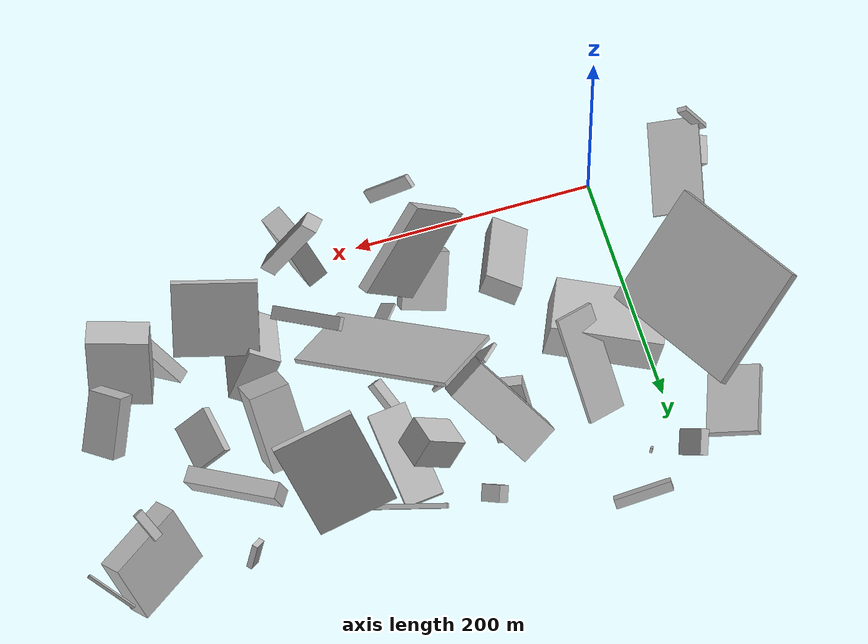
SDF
<sdf version="1.6">
 <world name="default">
  <model name="building_1">
   <static>0</static>
   <pose>1.3274118983855792 208.78622536845384 112.00216672509201 -0.9905370342779287 -0.22132501238584557 2.013250393915186</pose>
   <link name="link">
    <gravity>0</gravity>
    <pose>0 0 51.5 0 0 0</pose>
    <collision name="collision"><geometry><box><size>125 8 103</size></box></geometry></collision>
    <visual name="visual">
     <cast_shadows>0</cast_shadows>
     <geometry><box><size>125 8 103</size></box></geometry>
     <material>
      <script>
       <uri>model://HANNAS_wall/materials/scripts</uri>
       <uri>model://HANNAS_wall/materials/textures</uri>
       <name>vrc/HANNAS_wall</name>
      </script>
     </material>
    </visual>
   </link>
  </model>
  <model name="building_2">
   <static>0</static>
   <pose>24.79634708161931 129.62913767609635 50.97540744650268 1.660217493929028 0.11486067420688008 2.737960448891302</pose>
   <link name="link">
    <gravity>0</gravity>
    <pose>0 0 22.0 0 0 0</pose>
    <collision name="collision"><geometry><box><size>92 57 44</size></box></geometry></collision>
    <visual name="visual">
     <cast_shadows>0</cast_shadows>
     <geometry><box><size>92 57 44</size></box></geometry>
     <material>
      <script>
       <uri>model://HANNAS_wall/materials/scripts</uri>
       <uri>model://HANNAS_wall/materials/textures</uri>
       <name>vrc/HANNAS_wall</name>
      </script>
     </material>
    </visual>
   </link>
  </model>
  <model name="building_3">
   <static>0</static>
   <pose>208.85143768496755 136.13888734552614 75.28464623633099 0.3250127796803867 0.47955956256285365 -0.7325142716769804</pose>
   <link name="link">
    <gravity>0</gravity>
    <pose>0 0 2.0 0 0 0</pose>
    <collision name="collision"><geometry><box><size>150 65 4</size></box></geometry></collision>
    <visual name="visual">
     <cast_shadows>0</cast_shadows>
     <geometry><box><size>150 65 4</size></box></geometry>
     <material>
      <script>
       <uri>model://HANNAS_wall/materials/scripts</uri>
       <uri>model://HANNAS_wall/materials/textures</uri>
       <name>vrc/HANNAS_wall</name>
      </script>
     </material>
    </visual>
   </link>
  </model>
  <model name="building_4">
   <static>0</static>
   <pose>250.6017870113002 26.67992876694649 59.211925570522695 2.1870284420666897 -1.2887753153023662 -0.2899153582360417</pose>
   <link name="link">
    <gravity>0</gravity>
    <pose>0 0 14.0 0 0 0</pose>
    <collision name="collision"><geometry><box><size>80 18 28</size></box></geometry></collision>
    <visual name="visual">
     <cast_shadows>0</cast_shadows>
     <geometry><box><size>80 18 28</size></box></geometry>
     <material>
      <script>
       <uri>model://HANNAS_wall/materials/scripts</uri>
       <uri>model://HANNAS_wall/materials/textures</uri>
       <name>vrc/HANNAS_wall</name>
      </script>
     </material>
    </visual>
   </link>
  </model>
  <model name="building_6">
   <static>0</static>
   <pose>312.63157039077606 189.9651662339874 47.1140436336167 0.0026381380866511038 -0.6909395511283071 1.712107733959153</pose>
   <link name="link">
    <gravity>0</gravity>
    <pose>0 0 34.0 0 0 0</pose>
    <collision name="collision"><geometry><box><size>31 34 68</size></box></geometry></collision>
    <visual name="visual">
     <cast_shadows>0</cast_shadows>
     <geometry><box><size>31 34 68</size></box></geometry>
     <material>
      <script>
       <uri>model://HANNAS_wall/materials/scripts</uri>
       <uri>model://HANNAS_wall/materials/textures</uri>
       <name>vrc/HANNAS_wall</name>
      </script>
     </material>
    </visual>
   </link>
  </model>
  <model name="building_8">
   <static>0</static>
   <pose>58.646862178843136 181.81467790679918 54.73529243510025 0.8285575852619248 0.15089534409982477 -2.8275419913323807</pose>
   <link name="link">
    <gravity>0</gravity>
    <pose>0 0 2.0 0 0 0</pose>
    <collision name="collision"><geometry><box><size>33 93 4</size></box></geometry></collision>
    <visual name="visual">
     <cast_shadows>0</cast_shadows>
     <geometry><box><size>33 93 4</size></box></geometry>
     <material>
      <script>
       <uri>model://HANNAS_wall/materials/scripts</uri>
       <uri>model://HANNAS_wall/materials/textures</uri>
       <name>vrc/HANNAS_wall</name>
      </script>
     </material>
    </visual>
   </link>
  </model>
  <model name="building_9">
   <static>0</static>
   <pose>-81.45271103671784 4.308909702176099 77.74281443047568 1.1389647362476447 -0.11104611499235452 -1.768513082870891</pose>
   <link name="link">
    <gravity>0</gravity>
    <pose>0 0 4.0 0 0 0</pose>
    <collision name="collision"><geometry><box><size>4 44 8</size></box></geometry></collision>
    <visual name="visual">
     <cast_shadows>0</cast_shadows>
     <geometry><box><size>4 44 8</size></box></geometry>
     <material>
      <script>
       <uri>model://HANNAS_wall/materials/scripts</uri>
       <uri>model://HANNAS_wall/materials/textures</uri>
       <name>vrc/HANNAS_wall</name>
      </script>
     </material>
    </visual>
   </link>
  </model>
  <model name="building_11">
   <static>0</static>
   <pose>279.88081561566725 280.18441187853387 105.52363105121016 0.09408208423018355 0.20599704825763795 0.10961394803771672</pose>
   <link name="link">
    <gravity>0</gravity>
    <pose>0 0 75.0 0 0 0</pose>
    <collision name="collision"><geometry><box><size>66 4 150</size></box></geometry></collision>
    <visual name="visual">
     <cast_shadows>0</cast_shadows>
     <geometry><box><size>66 4 150</size></box></geometry>
     <material>
      <script>
       <uri>model://HANNAS_wall/materials/scripts</uri>
       <uri>model://HANNAS_wall/materials/textures</uri>
       <name>vrc/HANNAS_wall</name>
      </script>
     </material>
    </visual>
   </link>
  </model>
  <model name="building_14">
   <static>0</static>
   <pose>359.50408824925614 251.25148403319713 26.890394799365673 1.6108577501959744 -1.2223145256482797 -2.4950177120027637</pose>
   <link name="link">
    <gravity>0</gravity>
    <pose>0 0 2.5 0 0 0</pose>
    <collision name="collision"><geometry><box><size>26 10 5</size></box></geometry></collision>
    <visual name="visual">
     <cast_shadows>0</cast_shadows>
     <geometry><box><size>26 10 5</size></box></geometry>
     <material>
      <script>
       <uri>model://HANNAS_wall/materials/scripts</uri>
       <uri>model://HANNAS_wall/materials/textures</uri>
       <name>vrc/HANNAS_wall</name>
      </script>
     </material>
    </visual>
   </link>
  </model>
  <model name="building_17">
   <static>0</static>
   <pose>387.34950724208306 168.74131877873654 66.89703472776861 -0.23988855885658888 -0.7831872075637343 0.3460522305099299</pose>
   <link name="link">
    <gravity>0</gravity>
    <pose>0 0 16.5 0 0 0</pose>
    <collision name="collision"><geometry><box><size>8 39 33</size></box></geometry></collision>
    <visual name="visual">
     <cast_shadows>0</cast_shadows>
     <geometry><box><size>8 39 33</size></box></geometry>
     <material>
      <script>
       <uri>model://HANNAS_wall/materials/scripts</uri>
       <uri>model://HANNAS_wall/materials/textures</uri>
       <name>vrc/HANNAS_wall</name>
      </script>
     </material>
    </visual>
   </link>
  </model>
  <model name="building_19">
   <static>0</static>
   <pose>94.05640267748947 73.25885111039122 102.94713526971915 0.9214559560347219 0.26132134790668404 2.58080112795817</pose>
   <link name="link">
    <gravity>0</gravity>
    <pose>0 0 52.5 0 0 0</pose>
    <collision name="collision"><geometry><box><size>30 16 105</size></box></geometry></collision>
    <visual name="visual">
     <cast_shadows>0</cast_shadows>
     <geometry><box><size>30 16 105</size></box></geometry>
     <material>
      <script>
       <uri>model://HANNAS_wall/materials/scripts</uri>
       <uri>model://HANNAS_wall/materials/textures</uri>
       <name>vrc/HANNAS_wall</name>
      </script>
     </material>
    </visual>
   </link>
  </model>
  <model name="building_22">
   <static>0</static>
   <pose>403.1895105328669 94.0693859038324 21.649193044620347 -1.009065354302445 0.5803668132099041 -1.820546380904361</pose>
   <link name="link">
    <gravity>0</gravity>
    <pose>0 0 21.5 0 0 0</pose>
    <collision name="collision"><geometry><box><size>4 8 43</size></box></geometry></collision>
    <visual name="visual">
     <cast_shadows>0</cast_shadows>
     <geometry><box><size>4 8 43</size></box></geometry>
     <material>
      <script>
       <uri>model://HANNAS_wall/materials/scripts</uri>
       <uri>model://HANNAS_wall/materials/textures</uri>
       <name>vrc/HANNAS_wall</name>
      </script>
     </material>
    </visual>
   </link>
  </model>
  <model name="building_23">
   <static>0</static>
   <pose>324.5869534624123 86.12116498699646 45.30128760279128 2.247115104203333 -0.9235219572066491 -2.5584329920215634</pose>
   <link name="link">
    <gravity>0</gravity>
    <pose>0 0 13.5 0 0 0</pose>
    <collision name="collision"><geometry><box><size>46 64 27</size></box></geometry></collision>
    <visual name="visual">
     <cast_shadows>0</cast_shadows>
     <geometry><box><size>46 64 27</size></box></geometry>
     <material>
      <script>
       <uri>model://HANNAS_wall/materials/scripts</uri>
       <uri>model://HANNAS_wall/materials/textures</uri>
       <name>vrc/HANNAS_wall</name>
      </script>
     </material>
    </visual>
   </link>
  </model>
  <model name="building_24">
   <static>0</static>
   <pose>201.14379093418495 241.34477645276732 89.18895774992129 -1.9200010605693716 -0.876569280515366 -2.6745905295038446</pose>
   <link name="link">
    <gravity>0</gravity>
    <pose>0 0 14.0 0 0 0</pose>
    <collision name="collision"><geometry><box><size>27 37 28</size></box></geometry></collision>
    <visual name="visual">
     <cast_shadows>0</cast_shadows>
     <geometry><box><size>27 37 28</size></box></geometry>
     <material>
      <script>
       <uri>model://HANNAS_wall/materials/scripts</uri>
       <uri>model://HANNAS_wall/materials/textures</uri>
       <name>vrc/HANNAS_wall</name>
      </script>
     </material>
    </visual>
   </link>
  </model>
  <model name="building_26">
   <static>0</static>
   <pose>127.20560816456673 192.5883205190307 40.63039831246532 1.227269760062916 -0.24161373881534542 2.85362225382158</pose>
   <link name="link">
    <gravity>0</gravity>
    <pose>0 0 5.5 0 0 0</pose>
    <collision name="collision"><geometry><box><size>33 61 11</size></box></geometry></collision>
    <visual name="visual">
     <cast_shadows>0</cast_shadows>
     <geometry><box><size>33 61 11</size></box></geometry>
     <material>
      <script>
       <uri>model://HANNAS_wall/materials/scripts</uri>
       <uri>model://HANNAS_wall/materials/textures</uri>
       <name>vrc/HANNAS_wall</name>
      </script>
     </material>
    </visual>
   </link>
  </model>
  <model name="building_27">
   <static>0</static>
   <pose>433.2891129298189 244.47987343303427 35.89221615302713 2.0071429268056478 0.0441570005193739 0.5960258012477532</pose>
   <link name="link">
    <gravity>0</gravity>
    <pose>0 0 10.0 0 0 0</pose>
    <collision name="collision"><geometry><box><size>68 61 20</size></box></geometry></collision>
    <visual name="visual">
     <cast_shadows>0</cast_shadows>
     <geometry><box><size>68 61 20</size></box></geometry>
     <material>
      <script>
       <uri>model://HANNAS_wall/materials/scripts</uri>
       <uri>model://HANNAS_wall/materials/textures</uri>
       <name>vrc/HANNAS_wall</name>
      </script>
     </material>
    </visual>
   </link>
  </model>
  <model name="building_33">
   <static>0</static>
   <pose>302.12228141309674 237.96302263642295 45.3980988848065 -0.7925527091497501 -1.0559313833714836 0.4132108049893191</pose>
   <link name="link">
    <gravity>0</gravity>
    <pose>0 0 56.0 0 0 0</pose>
    <collision name="collision"><geometry><box><size>4 4 112</size></box></geometry></collision>
    <visual name="visual">
     <cast_shadows>0</cast_shadows>
     <geometry><box><size>4 4 112</size></box></geometry>
     <material>
      <script>
       <uri>model://HANNAS_wall/materials/scripts</uri>
       <uri>model://HANNAS_wall/materials/textures</uri>
       <name>vrc/HANNAS_wall</name>
      </script>
     </material>
    </visual>
   </link>
  </model>
  <model name="building_37">
   <static>0</static>
   <pose>423.68694761615023 100.53561510437379 58.42877765906608 0.01335591676967928 -0.22013701891844703 1.2499730855023217</pose>
   <link name="link">
    <gravity>0</gravity>
    <pose>0 0 37.5 0 0 0</pose>
    <collision name="collision"><geometry><box><size>23 50 75</size></box></geometry></collision>
    <visual name="visual">
     <cast_shadows>0</cast_shadows>
     <geometry><box><size>23 50 75</size></box></geometry>
     <material>
      <script>
       <uri>model://HANNAS_wall/materials/scripts</uri>
       <uri>model://HANNAS_wall/materials/textures</uri>
       <name>vrc/HANNAS_wall</name>
      </script>
     </material>
    </visual>
   </link>
  </model>
  <model name="building_38">
   <static>0</static>
   <pose>371.6042686408592 68.59174903682741 97.70544595038807 1.5692689198483272 0.521952412548534 -1.8432740669533143</pose>
   <link name="link">
    <gravity>0</gravity>
    <pose>0 0 34.5 0 0 0</pose>
    <collision name="collision"><geometry><box><size>5 69 69</size></box></geometry></collision>
    <visual name="visual">
     <cast_shadows>0</cast_shadows>
     <geometry><box><size>5 69 69</size></box></geometry>
     <material>
      <script>
       <uri>model://HANNAS_wall/materials/scripts</uri>
       <uri>model://HANNAS_wall/materials/textures</uri>
       <name>vrc/HANNAS_wall</name>
      </script>
     </material>
    </visual>
   </link>
  </model>
  <model name="building_40">
   <static>0</static>
   <pose>280.82934586149344 36.42514106211149 81.28288880397696 0.32709123719878874 -0.1270595116564671 -2.3000670465577744</pose>
   <link name="link">
    <gravity>0</gravity>
    <pose>0 0 75.0 0 0 0</pose>
    <collision name="collision"><geometry><box><size>12 13 150</size></box></geometry></collision>
    <visual name="visual">
     <cast_shadows>0</cast_shadows>
     <geometry><box><size>12 13 150</size></box></geometry>
     <material>
      <script>
       <uri>model://HANNAS_wall/materials/scripts</uri>
       <uri>model://HANNAS_wall/materials/textures</uri>
       <name>vrc/HANNAS_wall</name>
      </script>
     </material>
    </visual>
   </link>
  </model>
  <model name="building_41">
   <static>0</static>
   <pose>121.56065048794039 242.32937008884414 67.22205480873959 0.6461765429087863 -0.9210560477361449 1.5013260430137203</pose>
   <link name="link">
    <gravity>0</gravity>
    <pose>0 0 40.0 0 0 0</pose>
    <collision name="collision"><geometry><box><size>39 35 80</size></box></geometry></collision>
    <visual name="visual">
     <cast_shadows>0</cast_shadows>
     <geometry><box><size>39 35 80</size></box></geometry>
     <material>
      <script>
       <uri>model://HANNAS_wall/materials/scripts</uri>
       <uri>model://HANNAS_wall/materials/textures</uri>
       <name>vrc/HANNAS_wall</name>
      </script>
     </material>
    </visual>
   </link>
  </model>
  <model name="building_42">
   <static>0</static>
   <pose>206.86778625765461 82.42206589510195 10.009627297417815 1.3890027469590227 0.7761628268746331 -0.8342027626613067</pose>
   <link name="link">
    <gravity>0</gravity>
    <pose>0 0 12.5 0 0 0</pose>
    <collision name="collision"><geometry><box><size>18 2 25</size></box></geometry></collision>
    <visual name="visual">
     <cast_shadows>0</cast_shadows>
     <geometry><box><size>18 2 25</size></box></geometry>
     <material>
      <script>
       <uri>model://HANNAS_wall/materials/scripts</uri>
       <uri>model://HANNAS_wall/materials/textures</uri>
       <name>vrc/HANNAS_wall</name>
      </script>
     </material>
    </visual>
   </link>
  </model>
  <model name="building_44">
   <static>0</static>
   <pose>26.08158891377675 249.46596904179214 5.183209780218647 -0.01181578424232052 0.814186966878552 -2.109174800506235</pose>
   <link name="link">
    <gravity>0</gravity>
    <pose>0 0 2.0 0 0 0</pose>
    <collision name="collision"><geometry><box><size>6 2 4</size></box></geometry></collision>
    <visual name="visual">
     <cast_shadows>0</cast_shadows>
     <geometry><box><size>6 2 4</size></box></geometry>
     <material>
      <script>
       <uri>model://HANNAS_wall/materials/scripts</uri>
       <uri>model://HANNAS_wall/materials/textures</uri>
       <name>vrc/HANNAS_wall</name>
      </script>
     </material>
    </visual>
   </link>
  </model>
  <model name="building_45">
   <static>0</static>
   <pose>-74.72188651780397 17.145558322127314 27.555923258950287 1.097773642670524 1.0225918003714443 -0.6889365015161546</pose>
   <link name="link">
    <gravity>0</gravity>
    <pose>0 0 12.0 0 0 0</pose>
    <collision name="collision"><geometry><box><size>19 38 24</size></box></geometry></collision>
    <visual name="visual">
     <cast_shadows>0</cast_shadows>
     <geometry><box><size>19 38 24</size></box></geometry>
     <material>
      <script>
       <uri>model://HANNAS_wall/materials/scripts</uri>
       <uri>model://HANNAS_wall/materials/textures</uri>
       <name>vrc/HANNAS_wall</name>
      </script>
     </material>
    </visual>
   </link>
  </model>
  <model name="building_46">
   <static>0</static>
   <pose>475.90538894520637 253.28522989349642 31.424882026272222 -0.9927582402092404 0.8426798304350654 0.009136910801849463</pose>
   <link name="link">
    <gravity>0</gravity>
    <pose>0 0 1.0 0 0 0</pose>
    <collision name="collision"><geometry><box><size>3 46 2</size></box></geometry></collision>
    <visual name="visual">
     <cast_shadows>0</cast_shadows>
     <geometry><box><size>3 46 2</size></box></geometry>
     <material>
      <script>
       <uri>model://HANNAS_wall/materials/scripts</uri>
       <uri>model://HANNAS_wall/materials/textures</uri>
       <name>vrc/HANNAS_wall</name>
      </script>
     </material>
    </visual>
   </link>
  </model>
  <model name="building_48">
   <static>0</static>
   <pose>273.0558531078939 219.00014908529783 61.59160038645405 1.617239433657379 0.09372047166938356 -2.9056620657463452</pose>
   <link name="link">
    <gravity>0</gravity>
    <pose>0 0 2.0 0 0 0</pose>
    <collision name="collision"><geometry><box><size>37 31 4</size></box></geometry></collision>
    <visual name="visual">
     <cast_shadows>0</cast_shadows>
     <geometry><box><size>37 31 4</size></box></geometry>
     <material>
      <script>
       <uri>model://HANNAS_wall/materials/scripts</uri>
       <uri>model://HANNAS_wall/materials/textures</uri>
       <name>vrc/HANNAS_wall</name>
      </script>
     </material>
    </visual>
   </link>
  </model>
  <model name="building_49">
   <static>0</static>
   <pose>439.37351770362324 134.6701512570175 83.71063397737062 -0.37335777414506854 -0.7540615697872272 -2.0466608268427056</pose>
   <link name="link">
    <gravity>0</gravity>
    <pose>0 0 9.0 0 0 0</pose>
    <collision name="collision"><geometry><box><size>51 29 18</size></box></geometry></collision>
    <visual name="visual">
     <cast_shadows>0</cast_shadows>
     <geometry><box><size>51 29 18</size></box></geometry>
     <material>
      <script>
       <uri>model://HANNAS_wall/materials/scripts</uri>
       <uri>model://HANNAS_wall/materials/textures</uri>
       <name>vrc/HANNAS_wall</name>
      </script>
     </material>
    </visual>
   </link>
  </model>
  <model name="building_50">
   <static>0</static>
   <pose>128.15442209962146 216.55891348682204 18.19403136187882 1.8168881167097592 0.38356649963278644 -1.3860557493414427</pose>
   <link name="link">
    <gravity>0</gravity>
    <pose>0 0 4.0 0 0 0</pose>
    <collision name="collision"><geometry><box><size>12 23 8</size></box></geometry></collision>
    <visual name="visual">
     <cast_shadows>0</cast_shadows>
     <geometry><box><size>12 23 8</size></box></geometry>
     <material>
      <script>
       <uri>model://HANNAS_wall/materials/scripts</uri>
       <uri>model://HANNAS_wall/materials/textures</uri>
       <name>vrc/HANNAS_wall</name>
      </script>
     </material>
    </visual>
   </link>
  </model>
  <model name="building_51">
   <static>0</static>
   <pose>-3.827130395665993 272.78125460143195 50.70857440157906 0.8962607281589722 0.4144962403227775 1.216879183043147</pose>
   <link name="link">
    <gravity>0</gravity>
    <pose>0 0 4.0 0 0 0</pose>
    <collision name="collision"><geometry><box><size>21 27 8</size></box></geometry></collision>
    <visual name="visual">
     <cast_shadows>0</cast_shadows>
     <geometry><box><size>21 27 8</size></box></geometry>
     <material>
      <script>
       <uri>model://HANNAS_wall/materials/scripts</uri>
       <uri>model://HANNAS_wall/materials/textures</uri>
       <name>vrc/HANNAS_wall</name>
      </script>
     </material>
    </visual>
   </link>
  </model>
  <model name="building_57">
   <static>0</static>
   <pose>154.28725577740263 69.9276322856096 92.8917697599389 0.6124295129671733 -0.10301520012010075 2.1096409530819518</pose>
   <link name="link">
    <gravity>0</gravity>
    <pose>0 0 40.0 0 0 0</pose>
    <collision name="collision"><geometry><box><size>9 80 80</size></box></geometry></collision>
    <visual name="visual">
     <cast_shadows>0</cast_shadows>
     <geometry><box><size>9 80 80</size></box></geometry>
     <material>
      <script>
       <uri>model://HANNAS_wall/materials/scripts</uri>
       <uri>model://HANNAS_wall/materials/textures</uri>
       <name>vrc/HANNAS_wall</name>
      </script>
     </material>
    </visual>
   </link>
  </model>
  <model name="building_59">
   <static>0</static>
   <pose>222.83726059417023 217.8911579815531 53.23302124301085 0.03468131772180429 0.20757981644061943 1.680668308514106</pose>
   <link name="link">
    <gravity>0</gravity>
    <pose>0 0 3.0 0 0 0</pose>
    <collision name="collision"><geometry><box><size>80 32 6</size></box></geometry></collision>
    <visual name="visual">
     <cast_shadows>0</cast_shadows>
     <geometry><box><size>80 32 6</size></box></geometry>
     <material>
      <script>
       <uri>model://HANNAS_wall/materials/scripts</uri>
       <uri>model://HANNAS_wall/materials/textures</uri>
       <name>vrc/HANNAS_wall</name>
      </script>
     </material>
    </visual>
   </link>
  </model>
  <model name="building_65">
   <static>0</static>
   <pose>177.11720020466157 53.364487955419605 32.13502023038973 -1.8216386243225517 0.690405424540401 1.2022701764444086</pose>
   <link name="link">
    <gravity>0</gravity>
    <pose>0 0 18.5 0 0 0</pose>
    <collision name="collision"><geometry><box><size>49 18 37</size></box></geometry></collision>
    <visual name="visual">
     <cast_shadows>0</cast_shadows>
     <geometry><box><size>49 18 37</size></box></geometry>
     <material>
      <script>
       <uri>model://HANNAS_wall/materials/scripts</uri>
       <uri>model://HANNAS_wall/materials/textures</uri>
       <name>vrc/HANNAS_wall</name>
      </script>
     </material>
    </visual>
   </link>
  </model>
  <model name="building_68">
   <static>0</static>
   <pose>70.03672702150904 290.56314655053995 19.496573965048206 1.2672670596573854 -0.7441829572959244 -1.405840334646283</pose>
   <link name="link">
    <gravity>0</gravity>
    <pose>0 0 24.0 0 0 0</pose>
    <collision name="collision"><geometry><box><size>8 10 48</size></box></geometry></collision>
    <visual name="visual">
     <cast_shadows>0</cast_shadows>
     <geometry><box><size>8 10 48</size></box></geometry>
     <material>
      <script>
       <uri>model://HANNAS_wall/materials/scripts</uri>
       <uri>model://HANNAS_wall/materials/textures</uri>
       <name>vrc/HANNAS_wall</name>
      </script>
     </material>
    </visual>
   </link>
  </model>
  <model name="building_69">
   <static>0</static>
   <pose>-43.55640005905637 27.06185043514604 51.090944902163855 1.2516185095070582 -0.1894499111569099 -1.8120073567992212</pose>
   <link name="link">
    <gravity>0</gravity>
    <pose>0 0 21.5 0 0 0</pose>
    <collision name="collision"><geometry><box><size>80 2 43</size></box></geometry></collision>
    <visual name="visual">
     <cast_shadows>0</cast_shadows>
     <geometry><box><size>80 2 43</size></box></geometry>
     <material>
      <script>
       <uri>model://HANNAS_wall/materials/scripts</uri>
       <uri>model://HANNAS_wall/materials/textures</uri>
       <name>vrc/HANNAS_wall</name>
      </script>
     </material>
    </visual>
   </link>
  </model>
  <model name="building_70">
   <static>0</static>
   <pose>179.46103696524992 20.18483389458537 136.54435699378132 -2.6306888230995837 0.8773220861656218 -0.5431121395268786</pose>
   <link name="link">
    <gravity>0</gravity>
    <pose>0 0 5.5 0 0 0</pose>
    <collision name="collision"><geometry><box><size>54 4 11</size></box></geometry></collision>
    <visual name="visual">
     <cast_shadows>0</cast_shadows>
     <geometry><box><size>54 4 11</size></box></geometry>
     <material>
      <script>
       <uri>model://HANNAS_wall/materials/scripts</uri>
       <uri>model://HANNAS_wall/materials/textures</uri>
       <name>vrc/HANNAS_wall</name>
      </script>
     </material>
    </visual>
   </link>
  </model>
  <model name="building_73">
   <static>0</static>
   <pose>157.75737039816727 260.84276747091917 31.061317174896427 0.5408345331903656 -0.47905774574388726 2.5032158334804264</pose>
   <link name="link">
    <gravity>0</gravity>
    <pose>0 0 6.5 0 0 0</pose>
    <collision name="collision"><geometry><box><size>17 14 13</size></box></geometry></collision>
    <visual name="visual">
     <cast_shadows>0</cast_shadows>
     <geometry><box><size>17 14 13</size></box></geometry>
     <material>
      <script>
       <uri>model://HANNAS_wall/materials/scripts</uri>
       <uri>model://HANNAS_wall/materials/textures</uri>
       <name>vrc/HANNAS_wall</name>
      </script>
     </material>
    </visual>
   </link>
  </model>
  <model name="building_74">
   <static>0</static>
   <pose>331.42883564319226 241.3169090473043 95.39481011328782 2.5842626762222856 -1.232471986143637 -0.05090648268957956</pose>
   <link name="link">
    <gravity>0</gravity>
    <pose>0 0 40.0 0 0 0</pose>
    <collision name="collision"><geometry><box><size>20 14 80</size></box></geometry></collision>
    <visual name="visual">
     <cast_shadows>0</cast_shadows>
     <geometry><box><size>20 14 80</size></box></geometry>
     <material>
      <script>
       <uri>model://HANNAS_wall/materials/scripts</uri>
       <uri>model://HANNAS_wall/materials/textures</uri>
       <name>vrc/HANNAS_wall</name>
      </script>
     </material>
    </visual>
   </link>
  </model>
  <model name="building_75">
   <static>0</static>
   <pose>409.9395004698224 41.0989402639546 41.882133788101214 -2.4507930982828077 0.13283584768897985 0.7463885595195848</pose>
   <link name="link">
    <gravity>0</gravity>
    <pose>0 0 28.0 0 0 0</pose>
    <collision name="collision"><geometry><box><size>11 57 56</size></box></geometry></collision>
    <visual name="visual">
     <cast_shadows>0</cast_shadows>
     <geometry><box><size>11 57 56</size></box></geometry>
     <material>
      <script>
       <uri>model://HANNAS_wall/materials/scripts</uri>
       <uri>model://HANNAS_wall/materials/textures</uri>
       <name>vrc/HANNAS_wall</name>
      </script>
     </material>
    </visual>
   </link>
  </model>
  <model name="building_77">
   <static>0</static>
   <pose>212.90396855881215 185.55527559579141 44.01799724628273 1.1196493760286448 -0.06559117082109256 0.48101825883692223</pose>
   <link name="link">
    <gravity>0</gravity>
    <pose>0 0 20.5 0 0 0</pose>
    <collision name="collision"><geometry><box><size>8 13 41</size></box></geometry></collision>
    <visual name="visual">
     <cast_shadows>0</cast_shadows>
     <geometry><box><size>8 13 41</size></box></geometry>
     <material>
      <script>
       <uri>model://HANNAS_wall/materials/scripts</uri>
       <uri>model://HANNAS_wall/materials/textures</uri>
       <name>vrc/HANNAS_wall</name>
      </script>
     </material>
    </visual>
   </link>
  </model>
  <model name="building_80">
   <static>0</static>
   <pose>442.34570724831184 217.2488671425588 81.32424372369769 -2.289610319802626 0.07826870509819532 0.5217007107397035</pose>
   <link name="link">
    <gravity>0</gravity>
    <pose>0 0 13.5 0 0 0</pose>
    <collision name="collision"><geometry><box><size>8 4 27</size></box></geometry></collision>
    <visual name="visual">
     <cast_shadows>0</cast_shadows>
     <geometry><box><size>8 4 27</size></box></geometry>
     <material>
      <script>
       <uri>model://HANNAS_wall/materials/scripts</uri>
       <uri>model://HANNAS_wall/materials/textures</uri>
       <name>vrc/HANNAS_wall</name>
      </script>
     </material>
    </visual>
   </link>
  </model>
  <model name="building_81">
   <static>0</static>
   <pose>-60.22484195480741 202.42190498957555 17.854519071902303 1.7071304024807972 -0.2738597609418301 2.7615663164911344</pose>
   <link name="link">
    <gravity>0</gravity>
    <pose>0 0 28.5 0 0 0</pose>
    <collision name="collision"><geometry><box><size>43 10 57</size></box></geometry></collision>
    <visual name="visual">
     <cast_shadows>0</cast_shadows>
     <geometry><box><size>43 10 57</size></box></geometry>
     <material>
      <script>
       <uri>model://HANNAS_wall/materials/scripts</uri>
       <uri>model://HANNAS_wall/materials/textures</uri>
       <name>vrc/HANNAS_wall</name>
      </script>
     </material>
    </visual>
   </link>
  </model>
  <model name="building_83">
   <static>0</static>
   <pose>154.8818161380075 152.43915118632157 48.37083045254175 -2.7975965081602547 1.0224225581147361 -0.47221175765186824</pose>
   <link name="link">
    <gravity>0</gravity>
    <pose>0 0 1.5 0 0 0</pose>
    <collision name="collision"><geometry><box><size>80 20 3</size></box></geometry></collision>
    <visual name="visual">
     <cast_shadows>0</cast_shadows>
     <geometry><box><size>80 20 3</size></box></geometry>
     <material>
      <script>
       <uri>model://HANNAS_wall/materials/scripts</uri>
       <uri>model://HANNAS_wall/materials/textures</uri>
       <name>vrc/HANNAS_wall</name>
      </script>
     </material>
    </visual>
   </link>
  </model>
  <model name="building_84">
   <static>0</static>
   <pose>268.5694529424282 94.20429488535565 77.0691450728566 -1.020940781695805 -0.6161279681823788 2.292736031639363</pose>
   <link name="link">
    <gravity>0</gravity>
    <pose>0 0 5.5 0 0 0</pose>
    <collision name="collision"><geometry><box><size>80 4 11</size></box></geometry></collision>
    <visual name="visual">
     <cast_shadows>0</cast_shadows>
     <geometry><box><size>80 4 11</size></box></geometry>
     <material>
      <script>
       <uri>model://HANNAS_wall/materials/scripts</uri>
       <uri>model://HANNAS_wall/materials/textures</uri>
       <name>vrc/HANNAS_wall</name>
      </script>
     </material>
    </visual>
   </link>
  </model>
 </world>
</sdf>
